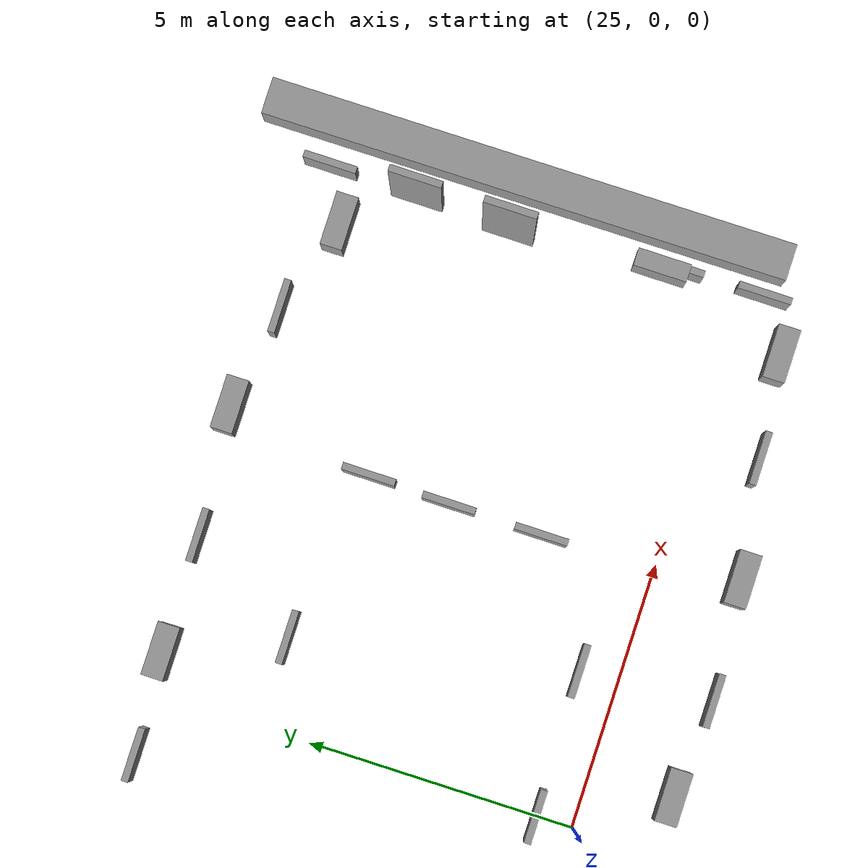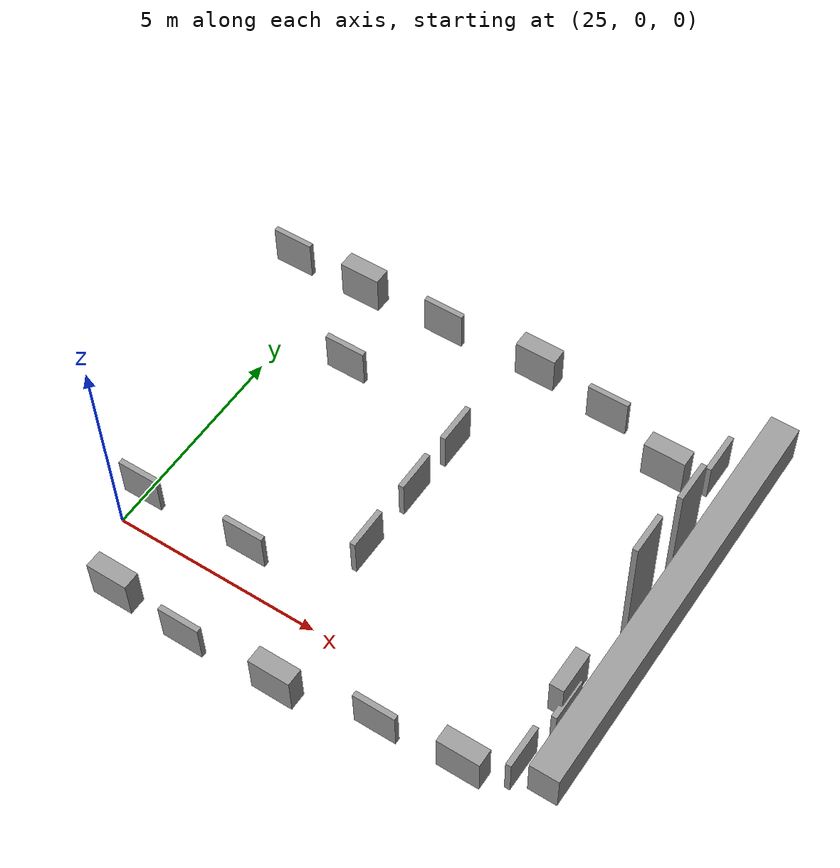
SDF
<sdf version="1.6">
 <world name="default">
  <model name="ground">
   <link name="body">
    <collision name="geom">
     <geometry><plane><normal>0 0 1</normal><size>1000 1000</size></plane></geometry>
     <surface><friction><ode><mu>100</mu><mu2>50</mu2></ode></friction></surface>
    </collision>
   </link>
   <static>1</static>
  </model>
  <model name="unit_box_clone">
   <link name="link">
    <inertial>
     <mass>1</mass>
     <inertia>
      <ixx>0.166667</ixx>
      <ixy>0</ixy>
      <ixz>0</ixz>
      <iyy>0.166667</iyy>
      <iyz>0</iyz>
      <izz>0.166667</izz>
     </inertia>
    </inertial>
    <visual name="visual">
     <geometry><box><size>0.68148 9.92291 1</size></box></geometry>
     <material>
      <script><name>Gazebo/Grey</name><uri>file://media/materials/scripts/gazebo.material</uri></script>
      <shader type="pixel"/>
      <ambient>0.3 0.3 0.3 1</ambient>
      <diffuse>0.7 0.7 0.7 1</diffuse>
      <specular>0.01 0.01 0.01 1</specular>
      <emissive>0 0 0 1</emissive>
     </material>
    </visual>
    <collision name="collision">
     <geometry><box><size>0.68148 9.92291 1</size></box></geometry>
     <surface>
      <friction>
       <ode><mu>1</mu><mu2>1</mu2><fdir1>0 0 0</fdir1><slip1>0</slip1><slip2>0</slip2></ode>
       <torsional>
        <coefficient>1</coefficient>
        <patch_radius>0</patch_radius>
        <surface_radius>0</surface_radius>
        <use_patch_radius>1</use_patch_radius>
        <ode><slip>0</slip></ode>
       </torsional>
      </friction>
      <bounce><restitution_coefficient>0</restitution_coefficient><threshold>1e+06</threshold></bounce>
      <contact>
       <collide_without_contact>0</collide_without_contact>
       <collide_without_contact_bitmask>1</collide_without_contact_bitmask>
       <collide_bitmask>1</collide_bitmask>
       <ode>
        <soft_cfm>0</soft_cfm>
        <soft_erp>0.2</soft_erp>
        <kp>1e+13</kp>
        <kd>1</kd>
        <max_vel>0.01</max_vel>
        <min_depth>0</min_depth>
       </ode>
       <bullet>
        <split_impulse>1</split_impulse>
        <split_impulse_penetration_threshold>-0.01</split_impulse_penetration_threshold>
        <soft_cfm>0</soft_cfm>
        <soft_erp>0.2</soft_erp>
        <kp>1e+13</kp>
        <kd>1</kd>
       </bullet>
      </contact>
     </surface>
    </collision>
   </link>
   <static>1</static>
   <pose>35.8927 4.33216 0.500415 0 -0 0</pose>
  </model>
  <model name="unit_box_1_clone_0_clone_9">
   <link name="link">
    <inertial>
     <mass>1</mass>
     <inertia>
      <ixx>0.166667</ixx>
      <ixy>0</ixy>
      <ixz>0</ixz>
      <iyy>0.166667</iyy>
      <iyz>0</iyz>
      <izz>0.166667</izz>
     </inertia>
    </inertial>
    <visual name="visual">
     <geometry><box><size>1 0.413614 1</size></box></geometry>
     <material>
      <script><name>Gazebo/Grey</name><uri>file://media/materials/scripts/gazebo.material</uri></script>
      <shader type="pixel"/>
      <ambient>0.3 0.3 0.3 1</ambient>
      <diffuse>0.7 0.7 0.7 1</diffuse>
      <specular>0.01 0.01 0.01 1</specular>
      <emissive>0 0 0 1</emissive>
     </material>
    </visual>
    <collision name="collision">
     <geometry><box><size>1 0.413614 1</size></box></geometry>
     <surface>
      <friction>
       <ode><mu>1</mu><mu2>1</mu2><fdir1>0 0 0</fdir1><slip1>0</slip1><slip2>0</slip2></ode>
       <torsional>
        <coefficient>1</coefficient>
        <patch_radius>0</patch_radius>
        <surface_radius>0</surface_radius>
        <use_patch_radius>1</use_patch_radius>
        <ode><slip>0</slip></ode>
       </torsional>
      </friction>
      <bounce><restitution_coefficient>0</restitution_coefficient><threshold>1e+06</threshold></bounce>
      <contact>
       <collide_without_contact>0</collide_without_contact>
       <collide_without_contact_bitmask>1</collide_without_contact_bitmask>
       <collide_bitmask>1</collide_bitmask>
       <ode>
        <soft_cfm>0</soft_cfm>
        <soft_erp>0.2</soft_erp>
        <kp>1e+13</kp>
        <kd>1</kd>
        <max_vel>0.01</max_vel>
        <min_depth>0</min_depth>
       </ode>
       <bullet>
        <split_impulse>1</split_impulse>
        <split_impulse_penetration_threshold>-0.01</split_impulse_penetration_threshold>
        <soft_cfm>0</soft_cfm>
        <soft_erp>0.2</soft_erp>
        <kp>1e+13</kp>
        <kd>1</kd>
       </bullet>
      </contact>
     </surface>
    </collision>
   </link>
   <static>1</static>
   <pose>25.7785 8.00947 0.500039 1e-05 -0 0</pose>
  </model>
  <model name="unit_box_1_clone_0_clone_10">
   <link name="link">
    <inertial>
     <mass>1</mass>
     <inertia>
      <ixx>0.166667</ixx>
      <ixy>0</ixy>
      <ixz>0</ixz>
      <iyy>0.166667</iyy>
      <iyz>0</iyz>
      <izz>0.166667</izz>
     </inertia>
    </inertial>
    <visual name="visual">
     <geometry><box><size>1 0.413614 1</size></box></geometry>
     <material>
      <script><name>Gazebo/Grey</name><uri>file://media/materials/scripts/gazebo.material</uri></script>
      <shader type="pixel"/>
      <ambient>0.3 0.3 0.3 1</ambient>
      <diffuse>0.7 0.7 0.7 1</diffuse>
      <specular>0.01 0.01 0.01 1</specular>
      <emissive>0 0 0 1</emissive>
     </material>
    </visual>
    <collision name="collision">
     <geometry><box><size>1 0.413614 1</size></box></geometry>
     <surface>
      <friction>
       <ode><mu>1</mu><mu2>1</mu2><fdir1>0 0 0</fdir1><slip1>0</slip1><slip2>0</slip2></ode>
       <torsional>
        <coefficient>1</coefficient>
        <patch_radius>0</patch_radius>
        <surface_radius>0</surface_radius>
        <use_patch_radius>1</use_patch_radius>
        <ode><slip>0</slip></ode>
       </torsional>
      </friction>
      <bounce><restitution_coefficient>0</restitution_coefficient><threshold>1e+06</threshold></bounce>
      <contact>
       <collide_without_contact>0</collide_without_contact>
       <collide_without_contact_bitmask>1</collide_without_contact_bitmask>
       <collide_bitmask>1</collide_bitmask>
       <ode>
        <soft_cfm>0</soft_cfm>
        <soft_erp>0.2</soft_erp>
        <kp>1e+13</kp>
        <kd>1</kd>
        <max_vel>0.01</max_vel>
        <min_depth>0</min_depth>
       </ode>
       <bullet>
        <split_impulse>1</split_impulse>
        <split_impulse_penetration_threshold>-0.01</split_impulse_penetration_threshold>
        <soft_cfm>0</soft_cfm>
        <soft_erp>0.2</soft_erp>
        <kp>1e+13</kp>
        <kd>1</kd>
       </bullet>
      </contact>
     </surface>
    </collision>
   </link>
   <static>1</static>
   <pose>30.3719 8.20697 0.500039 1e-05 -0 0</pose>
  </model>
  <model name="unit_box_1_clone_0_clone_12">
   <link name="link">
    <inertial>
     <mass>1</mass>
     <inertia>
      <ixx>0.166667</ixx>
      <ixy>0</ixy>
      <ixz>0</ixz>
      <iyy>0.166667</iyy>
      <iyz>0</iyz>
      <izz>0.166667</izz>
     </inertia>
    </inertial>
    <visual name="visual">
     <geometry><box><size>1 0.413614 1</size></box></geometry>
     <material>
      <script><name>Gazebo/Grey</name><uri>file://media/materials/scripts/gazebo.material</uri></script>
      <shader type="pixel"/>
      <ambient>0.3 0.3 0.3 1</ambient>
      <diffuse>0.7 0.7 0.7 1</diffuse>
      <specular>0.01 0.01 0.01 1</specular>
      <emissive>0 0 0 1</emissive>
     </material>
    </visual>
    <collision name="collision">
     <geometry><box><size>1 0.413614 1</size></box></geometry>
     <surface>
      <friction>
       <ode><mu>1</mu><mu2>1</mu2><fdir1>0 0 0</fdir1><slip1>0</slip1><slip2>0</slip2></ode>
       <torsional>
        <coefficient>1</coefficient>
        <patch_radius>0</patch_radius>
        <surface_radius>0</surface_radius>
        <use_patch_radius>1</use_patch_radius>
        <ode><slip>0</slip></ode>
       </torsional>
      </friction>
      <bounce><restitution_coefficient>0</restitution_coefficient><threshold>1e+06</threshold></bounce>
      <contact>
       <collide_without_contact>0</collide_without_contact>
       <collide_without_contact_bitmask>1</collide_without_contact_bitmask>
       <collide_bitmask>1</collide_bitmask>
       <ode>
        <soft_cfm>0</soft_cfm>
        <soft_erp>0.2</soft_erp>
        <kp>1e+13</kp>
        <kd>1</kd>
        <max_vel>0.01</max_vel>
        <min_depth>0</min_depth>
       </ode>
       <bullet>
        <split_impulse>1</split_impulse>
        <split_impulse_penetration_threshold>-0.01</split_impulse_penetration_threshold>
        <soft_cfm>0</soft_cfm>
        <soft_erp>0.2</soft_erp>
        <kp>1e+13</kp>
        <kd>1</kd>
       </bullet>
      </contact>
     </surface>
    </collision>
   </link>
   <static>1</static>
   <pose>26.1096 -1.52016 0.500033 1e-05 -0 0</pose>
  </model>
  <model name="unit_box_1_clone_0_clone_13">
   <link name="link">
    <inertial>
     <mass>1</mass>
     <inertia>
      <ixx>0.166667</ixx>
      <ixy>0</ixy>
      <ixz>0</ixz>
      <iyy>0.166667</iyy>
      <iyz>0</iyz>
      <izz>0.166667</izz>
     </inertia>
    </inertial>
    <visual name="visual">
     <geometry><box><size>1 0.413614 1</size></box></geometry>
     <material>
      <script><name>Gazebo/Grey</name><uri>file://media/materials/scripts/gazebo.material</uri></script>
      <shader type="pixel"/>
      <ambient>0.3 0.3 0.3 1</ambient>
      <diffuse>0.7 0.7 0.7 1</diffuse>
      <specular>0.01 0.01 0.01 1</specular>
      <emissive>0 0 0 1</emissive>
     </material>
    </visual>
    <collision name="collision">
     <geometry><box><size>1 0.413614 1</size></box></geometry>
     <surface>
      <friction>
       <ode><mu>1</mu><mu2>1</mu2><fdir1>0 0 0</fdir1><slip1>0</slip1><slip2>0</slip2></ode>
       <torsional>
        <coefficient>1</coefficient>
        <patch_radius>0</patch_radius>
        <surface_radius>0</surface_radius>
        <use_patch_radius>1</use_patch_radius>
        <ode><slip>0</slip></ode>
       </torsional>
      </friction>
      <bounce><restitution_coefficient>0</restitution_coefficient><threshold>1e+06</threshold></bounce>
      <contact>
       <collide_without_contact>0</collide_without_contact>
       <collide_without_contact_bitmask>1</collide_without_contact_bitmask>
       <collide_bitmask>1</collide_bitmask>
       <ode>
        <soft_cfm>0</soft_cfm>
        <soft_erp>0.2</soft_erp>
        <kp>1e+13</kp>
        <kd>1</kd>
        <max_vel>0.01</max_vel>
        <min_depth>0</min_depth>
       </ode>
       <bullet>
        <split_impulse>1</split_impulse>
        <split_impulse_penetration_threshold>-0.01</split_impulse_penetration_threshold>
        <soft_cfm>0</soft_cfm>
        <soft_erp>0.2</soft_erp>
        <kp>1e+13</kp>
        <kd>1</kd>
       </bullet>
      </contact>
     </surface>
    </collision>
   </link>
   <static>1</static>
   <pose>30.197 -1.52136 0.500034 1e-05 -0 0</pose>
  </model>
  <model name="unit_box_1_clone_0_clone_14">
   <link name="link">
    <inertial>
     <mass>1</mass>
     <inertia>
      <ixx>0.166667</ixx>
      <ixy>0</ixy>
      <ixz>0</ixz>
      <iyy>0.166667</iyy>
      <iyz>0</iyz>
      <izz>0.166667</izz>
     </inertia>
    </inertial>
    <visual name="visual">
     <geometry><box><size>1 0.413614 1</size></box></geometry>
     <material>
      <script><name>Gazebo/Grey</name><uri>file://media/materials/scripts/gazebo.material</uri></script>
      <shader type="pixel"/>
      <ambient>0.3 0.3 0.3 1</ambient>
      <diffuse>0.7 0.7 0.7 1</diffuse>
      <specular>0.01 0.01 0.01 1</specular>
      <emissive>0 0 0 1</emissive>
     </material>
    </visual>
    <collision name="collision">
     <geometry><box><size>1 0.413614 1</size></box></geometry>
     <surface>
      <friction>
       <ode><mu>1</mu><mu2>1</mu2><fdir1>0 0 0</fdir1><slip1>0</slip1><slip2>0</slip2></ode>
       <torsional>
        <coefficient>1</coefficient>
        <patch_radius>0</patch_radius>
        <surface_radius>0</surface_radius>
        <use_patch_radius>1</use_patch_radius>
        <ode><slip>0</slip></ode>
       </torsional>
      </friction>
      <bounce><restitution_coefficient>0</restitution_coefficient><threshold>1e+06</threshold></bounce>
      <contact>
       <collide_without_contact>0</collide_without_contact>
       <collide_without_contact_bitmask>1</collide_without_contact_bitmask>
       <collide_bitmask>1</collide_bitmask>
       <ode>
        <soft_cfm>0</soft_cfm>
        <soft_erp>0.2</soft_erp>
        <kp>1e+13</kp>
        <kd>1</kd>
        <max_vel>0.01</max_vel>
        <min_depth>0</min_depth>
       </ode>
       <bullet>
        <split_impulse>1</split_impulse>
        <split_impulse_penetration_threshold>-0.01</split_impulse_penetration_threshold>
        <soft_cfm>0</soft_cfm>
        <soft_erp>0.2</soft_erp>
        <kp>1e+13</kp>
        <kd>1</kd>
       </bullet>
      </contact>
     </surface>
    </collision>
   </link>
   <static>1</static>
   <pose>34.1216 7.35234 0.500025 1e-05 -0 0</pose>
  </model>
  <model name="unit_box_1_clone_0_clone_15">
   <link name="link">
    <inertial>
     <mass>1</mass>
     <inertia>
      <ixx>0.166667</ixx>
      <ixy>0</ixy>
      <ixz>0</ixz>
      <iyy>0.166667</iyy>
      <iyz>0</iyz>
      <izz>0.166667</izz>
     </inertia>
    </inertial>
    <visual name="visual">
     <geometry><box><size>1 0.413614 1</size></box></geometry>
     <material>
      <script><name>Gazebo/Grey</name><uri>file://media/materials/scripts/gazebo.material</uri></script>
      <shader type="pixel"/>
      <ambient>0.3 0.3 0.3 1</ambient>
      <diffuse>0.7 0.7 0.7 1</diffuse>
      <specular>0.01 0.01 0.01 1</specular>
      <emissive>0 0 0 1</emissive>
     </material>
    </visual>
    <collision name="collision">
     <geometry><box><size>1 0.413614 1</size></box></geometry>
     <surface>
      <friction>
       <ode><mu>1</mu><mu2>1</mu2><fdir1>0 0 0</fdir1><slip1>0</slip1><slip2>0</slip2></ode>
       <torsional>
        <coefficient>1</coefficient>
        <patch_radius>0</patch_radius>
        <surface_radius>0</surface_radius>
        <use_patch_radius>1</use_patch_radius>
        <ode><slip>0</slip></ode>
       </torsional>
      </friction>
      <bounce><restitution_coefficient>0</restitution_coefficient><threshold>1e+06</threshold></bounce>
      <contact>
       <collide_without_contact>0</collide_without_contact>
       <collide_without_contact_bitmask>1</collide_without_contact_bitmask>
       <collide_bitmask>1</collide_bitmask>
       <ode>
        <soft_cfm>0</soft_cfm>
        <soft_erp>0.2</soft_erp>
        <kp>1e+13</kp>
        <kd>1</kd>
        <max_vel>0.01</max_vel>
        <min_depth>0</min_depth>
       </ode>
       <bullet>
        <split_impulse>1</split_impulse>
        <split_impulse_penetration_threshold>-0.01</split_impulse_penetration_threshold>
        <soft_cfm>0</soft_cfm>
        <soft_erp>0.2</soft_erp>
        <kp>1e+13</kp>
        <kd>1</kd>
       </bullet>
      </contact>
     </surface>
    </collision>
   </link>
   <static>1</static>
   <pose>34.2763 -0.955923 0.500039 1e-05 -0 0</pose>
  </model>
  <model name="unit_box_1_clone_0_clone_16_clone_3">
   <link name="link">
    <inertial>
     <mass>1</mass>
     <inertia>
      <ixx>0.166667</ixx>
      <ixy>0</ixy>
      <ixz>0</ixz>
      <iyy>0.166667</iyy>
      <iyz>0</iyz>
      <izz>0.166667</izz>
     </inertia>
    </inertial>
    <visual name="visual">
     <geometry><box><size>1 0.12971 1</size></box></geometry>
     <material>
      <script><name>Gazebo/Grey</name><uri>file://media/materials/scripts/gazebo.material</uri></script>
      <shader type="pixel"/>
      <ambient>0.3 0.3 0.3 1</ambient>
      <diffuse>0.7 0.7 0.7 1</diffuse>
      <specular>0.01 0.01 0.01 1</specular>
      <emissive>0 0 0 1</emissive>
     </material>
    </visual>
    <collision name="collision">
     <geometry><box><size>1 0.12971 1</size></box></geometry>
     <surface>
      <friction>
       <ode><mu>1</mu><mu2>1</mu2><fdir1>0 0 0</fdir1><slip1>0</slip1><slip2>0</slip2></ode>
       <torsional>
        <coefficient>1</coefficient>
        <patch_radius>0</patch_radius>
        <surface_radius>0</surface_radius>
        <use_patch_radius>1</use_patch_radius>
        <ode><slip>0</slip></ode>
       </torsional>
      </friction>
      <bounce><restitution_coefficient>0</restitution_coefficient><threshold>1e+06</threshold></bounce>
      <contact>
       <collide_without_contact>0</collide_without_contact>
       <collide_without_contact_bitmask>1</collide_without_contact_bitmask>
       <collide_bitmask>1</collide_bitmask>
       <ode>
        <soft_cfm>0</soft_cfm>
        <soft_erp>0.2</soft_erp>
        <kp>1e+13</kp>
        <kd>1</kd>
        <max_vel>0.01</max_vel>
        <min_depth>0</min_depth>
       </ode>
       <bullet>
        <split_impulse>1</split_impulse>
        <split_impulse_penetration_threshold>-0.01</split_impulse_penetration_threshold>
        <soft_cfm>0</soft_cfm>
        <soft_erp>0.2</soft_erp>
        <kp>1e+13</kp>
        <kd>1</kd>
       </bullet>
      </contact>
     </surface>
    </collision>
   </link>
   <static>1</static>
   <pose>27.965 -1.68844 0.500002 1e-05 -0 0</pose>
  </model>
  <model name="unit_box_1_clone_0_clone_16_clone_4">
   <link name="link">
    <inertial>
     <mass>1</mass>
     <inertia>
      <ixx>0.166667</ixx>
      <ixy>0</ixy>
      <ixz>0</ixz>
      <iyy>0.166667</iyy>
      <iyz>0</iyz>
      <izz>0.166667</izz>
     </inertia>
    </inertial>
    <visual name="visual">
     <geometry><box><size>1 0.12971 1</size></box></geometry>
     <material>
      <script><name>Gazebo/Grey</name><uri>file://media/materials/scripts/gazebo.material</uri></script>
      <shader type="pixel"/>
      <ambient>0.3 0.3 0.3 1</ambient>
      <diffuse>0.7 0.7 0.7 1</diffuse>
      <specular>0.01 0.01 0.01 1</specular>
      <emissive>0 0 0 1</emissive>
     </material>
    </visual>
    <collision name="collision">
     <geometry><box><size>1 0.12971 1</size></box></geometry>
     <surface>
      <friction>
       <ode><mu>1</mu><mu2>1</mu2><fdir1>0 0 0</fdir1><slip1>0</slip1><slip2>0</slip2></ode>
       <torsional>
        <coefficient>1</coefficient>
        <patch_radius>0</patch_radius>
        <surface_radius>0</surface_radius>
        <use_patch_radius>1</use_patch_radius>
        <ode><slip>0</slip></ode>
       </torsional>
      </friction>
      <bounce><restitution_coefficient>0</restitution_coefficient><threshold>1e+06</threshold></bounce>
      <contact>
       <collide_without_contact>0</collide_without_contact>
       <collide_without_contact_bitmask>1</collide_without_contact_bitmask>
       <collide_bitmask>1</collide_bitmask>
       <ode>
        <soft_cfm>0</soft_cfm>
        <soft_erp>0.2</soft_erp>
        <kp>1e+13</kp>
        <kd>1</kd>
        <max_vel>0.01</max_vel>
        <min_depth>0</min_depth>
       </ode>
       <bullet>
        <split_impulse>1</split_impulse>
        <split_impulse_penetration_threshold>-0.01</split_impulse_penetration_threshold>
        <soft_cfm>0</soft_cfm>
        <soft_erp>0.2</soft_erp>
        <kp>1e+13</kp>
        <kd>1</kd>
       </bullet>
      </contact>
     </surface>
    </collision>
   </link>
   <static>1</static>
   <pose>32.3657 -1.16849 0.500007 1e-05 -0 0</pose>
  </model>
  <model name="unit_box_1_clone_0_clone_16_clone_5">
   <link name="link">
    <inertial>
     <mass>1</mass>
     <inertia>
      <ixx>0.166667</ixx>
      <ixy>0</ixy>
      <ixz>0</ixz>
      <iyy>0.166667</iyy>
      <iyz>0</iyz>
      <izz>0.166667</izz>
     </inertia>
    </inertial>
    <visual name="visual">
     <geometry><box><size>1 0.12971 1</size></box></geometry>
     <material>
      <script><name>Gazebo/Grey</name><uri>file://media/materials/scripts/gazebo.material</uri></script>
      <shader type="pixel"/>
      <ambient>0.3 0.3 0.3 1</ambient>
      <diffuse>0.7 0.7 0.7 1</diffuse>
      <specular>0.01 0.01 0.01 1</specular>
      <emissive>0 0 0 1</emissive>
     </material>
    </visual>
    <collision name="collision">
     <geometry><box><size>1 0.12971 1</size></box></geometry>
     <surface>
      <friction>
       <ode><mu>1</mu><mu2>1</mu2><fdir1>0 0 0</fdir1><slip1>0</slip1><slip2>0</slip2></ode>
       <torsional>
        <coefficient>1</coefficient>
        <patch_radius>0</patch_radius>
        <surface_radius>0</surface_radius>
        <use_patch_radius>1</use_patch_radius>
        <ode><slip>0</slip></ode>
       </torsional>
      </friction>
      <bounce><restitution_coefficient>0</restitution_coefficient><threshold>1e+06</threshold></bounce>
      <contact>
       <collide_without_contact>0</collide_without_contact>
       <collide_without_contact_bitmask>1</collide_without_contact_bitmask>
       <collide_bitmask>1</collide_bitmask>
       <ode>
        <soft_cfm>0</soft_cfm>
        <soft_erp>0.2</soft_erp>
        <kp>1e+13</kp>
        <kd>1</kd>
        <max_vel>0.01</max_vel>
        <min_depth>0</min_depth>
       </ode>
       <bullet>
        <split_impulse>1</split_impulse>
        <split_impulse_penetration_threshold>-0.01</split_impulse_penetration_threshold>
        <soft_cfm>0</soft_cfm>
        <soft_erp>0.2</soft_erp>
        <kp>1e+13</kp>
        <kd>1</kd>
       </bullet>
      </contact>
     </surface>
    </collision>
   </link>
   <static>1</static>
   <pose>32.3295 7.9026 0.499996 1e-05 -0 0</pose>
  </model>
  <model name="unit_box_1_clone_0_clone_16_clone_6">
   <link name="link">
    <inertial>
     <mass>1</mass>
     <inertia>
      <ixx>0.166667</ixx>
      <ixy>0</ixy>
      <ixz>0</ixz>
      <iyy>0.166667</iyy>
      <iyz>0</iyz>
      <izz>0.166667</izz>
     </inertia>
    </inertial>
    <visual name="visual">
     <geometry><box><size>1 0.12971 1</size></box></geometry>
     <material>
      <script><name>Gazebo/Grey</name><uri>file://media/materials/scripts/gazebo.material</uri></script>
      <shader type="pixel"/>
      <ambient>0.3 0.3 0.3 1</ambient>
      <diffuse>0.7 0.7 0.7 1</diffuse>
      <specular>0.01 0.01 0.01 1</specular>
      <emissive>0 0 0 1</emissive>
     </material>
    </visual>
    <collision name="collision">
     <geometry><box><size>1 0.12971 1</size></box></geometry>
     <surface>
      <friction>
       <ode><mu>1</mu><mu2>1</mu2><fdir1>0 0 0</fdir1><slip1>0</slip1><slip2>0</slip2></ode>
       <torsional>
        <coefficient>1</coefficient>
        <patch_radius>0</patch_radius>
        <surface_radius>0</surface_radius>
        <use_patch_radius>1</use_patch_radius>
        <ode><slip>0</slip></ode>
       </torsional>
      </friction>
      <bounce><restitution_coefficient>0</restitution_coefficient><threshold>1e+06</threshold></bounce>
      <contact>
       <collide_without_contact>0</collide_without_contact>
       <collide_without_contact_bitmask>1</collide_without_contact_bitmask>
       <collide_bitmask>1</collide_bitmask>
       <ode>
        <soft_cfm>0</soft_cfm>
        <soft_erp>0.2</soft_erp>
        <kp>1e+13</kp>
        <kd>1</kd>
        <max_vel>0.01</max_vel>
        <min_depth>0</min_depth>
       </ode>
       <bullet>
        <split_impulse>1</split_impulse>
        <split_impulse_penetration_threshold>-0.01</split_impulse_penetration_threshold>
        <soft_cfm>0</soft_cfm>
        <soft_erp>0.2</soft_erp>
        <kp>1e+13</kp>
        <kd>1</kd>
       </bullet>
      </contact>
     </surface>
    </collision>
   </link>
   <static>1</static>
   <pose>27.9586 8.02432 0.499997 1e-05 -0 0</pose>
  </model>
  <model name="unit_box_1_clone_0_clone_16_clone_7">
   <link name="link">
    <inertial>
     <mass>1</mass>
     <inertia>
      <ixx>0.166667</ixx>
      <ixy>0</ixy>
      <ixz>0</ixz>
      <iyy>0.166667</iyy>
      <iyz>0</iyz>
      <izz>0.166667</izz>
     </inertia>
    </inertial>
    <visual name="visual">
     <geometry><box><size>1 0.12971 1</size></box></geometry>
     <material>
      <script><name>Gazebo/Grey</name><uri>file://media/materials/scripts/gazebo.material</uri></script>
      <shader type="pixel"/>
      <ambient>0.3 0.3 0.3 1</ambient>
      <diffuse>0.7 0.7 0.7 1</diffuse>
      <specular>0.01 0.01 0.01 1</specular>
      <emissive>0 0 0 1</emissive>
     </material>
    </visual>
    <collision name="collision">
     <geometry><box><size>1 0.12971 1</size></box></geometry>
     <surface>
      <friction>
       <ode><mu>1</mu><mu2>1</mu2><fdir1>0 0 0</fdir1><slip1>0</slip1><slip2>0</slip2></ode>
       <torsional>
        <coefficient>1</coefficient>
        <patch_radius>0</patch_radius>
        <surface_radius>0</surface_radius>
        <use_patch_radius>1</use_patch_radius>
        <ode><slip>0</slip></ode>
       </torsional>
      </friction>
      <bounce><restitution_coefficient>0</restitution_coefficient><threshold>1e+06</threshold></bounce>
      <contact>
       <collide_without_contact>0</collide_without_contact>
       <collide_without_contact_bitmask>1</collide_without_contact_bitmask>
       <collide_bitmask>1</collide_bitmask>
       <ode>
        <soft_cfm>0</soft_cfm>
        <soft_erp>0.2</soft_erp>
        <kp>1e+13</kp>
        <kd>1</kd>
        <max_vel>0.01</max_vel>
        <min_depth>0</min_depth>
       </ode>
       <bullet>
        <split_impulse>1</split_impulse>
        <split_impulse_penetration_threshold>-0.01</split_impulse_penetration_threshold>
        <soft_cfm>0</soft_cfm>
        <soft_erp>0.2</soft_erp>
        <kp>1e+13</kp>
        <kd>1</kd>
       </bullet>
      </contact>
     </surface>
    </collision>
   </link>
   <static>1</static>
   <pose>23.8762 7.89806 0.499996 1e-05 -0 0</pose>
  </model>
  <model name="unit_box_1_clone_0_clone_16_clone_12_clone_0">
   <link name="link">
    <inertial>
     <mass>1</mass>
     <inertia>
      <ixx>0.166667</ixx>
      <ixy>0</ixy>
      <ixz>0</ixz>
      <iyy>0.166667</iyy>
      <iyz>0</iyz>
      <izz>0.166667</izz>
     </inertia>
    </inertial>
    <visual name="visual">
     <geometry><box><size>1 0.12971 1</size></box></geometry>
     <material>
      <script><name>Gazebo/Grey</name><uri>file://media/materials/scripts/gazebo.material</uri></script>
      <shader type="pixel"/>
      <ambient>0.3 0.3 0.3 1</ambient>
      <diffuse>0.7 0.7 0.7 1</diffuse>
      <specular>0.01 0.01 0.01 1</specular>
      <emissive>0 0 0 1</emissive>
     </material>
    </visual>
    <collision name="collision">
     <geometry><box><size>1 0.12971 1</size></box></geometry>
     <surface>
      <friction>
       <ode><mu>1</mu><mu2>1</mu2><fdir1>0 0 0</fdir1><slip1>0</slip1><slip2>0</slip2></ode>
       <torsional>
        <coefficient>1</coefficient>
        <patch_radius>0</patch_radius>
        <surface_radius>0</surface_radius>
        <use_patch_radius>1</use_patch_radius>
        <ode><slip>0</slip></ode>
       </torsional>
      </friction>
      <bounce><restitution_coefficient>0</restitution_coefficient><threshold>1e+06</threshold></bounce>
      <contact>
       <collide_without_contact>0</collide_without_contact>
       <collide_without_contact_bitmask>1</collide_without_contact_bitmask>
       <collide_bitmask>1</collide_bitmask>
       <ode>
        <soft_cfm>0</soft_cfm>
        <soft_erp>0.2</soft_erp>
        <kp>1e+13</kp>
        <kd>1</kd>
        <max_vel>0.01</max_vel>
        <min_depth>0</min_depth>
       </ode>
       <bullet>
        <split_impulse>1</split_impulse>
        <split_impulse_penetration_threshold>-0.01</split_impulse_penetration_threshold>
        <soft_cfm>0</soft_cfm>
        <soft_erp>0.2</soft_erp>
        <kp>1e+13</kp>
        <kd>1</kd>
       </bullet>
      </contact>
     </surface>
    </collision>
   </link>
   <static>1</static>
   <pose>35.0872 7.83741 0.500027 0 1e-05 -1.57561</pose>
  </model>
  <model name="unit_box_1_clone_0_clone_16_clone_12_clone_1">
   <link name="link">
    <inertial>
     <mass>1</mass>
     <inertia>
      <ixx>0.166667</ixx>
      <ixy>0</ixy>
      <ixz>0</ixz>
      <iyy>0.166667</iyy>
      <iyz>0</iyz>
      <izz>0.166667</izz>
     </inertia>
    </inertial>
    <visual name="visual">
     <geometry><box><size>1 0.12971 3.28461</size></box></geometry>
     <material>
      <script><name>Gazebo/Grey</name><uri>file://media/materials/scripts/gazebo.material</uri></script>
      <shader type="pixel"/>
      <ambient>0.3 0.3 0.3 1</ambient>
      <diffuse>0.7 0.7 0.7 1</diffuse>
      <specular>0.01 0.01 0.01 1</specular>
      <emissive>0 0 0 1</emissive>
     </material>
    </visual>
    <collision name="collision">
     <geometry><box><size>1 0.12971 3.28461</size></box></geometry>
     <surface>
      <friction>
       <ode><mu>1</mu><mu2>1</mu2><fdir1>0 0 0</fdir1><slip1>0</slip1><slip2>0</slip2></ode>
       <torsional>
        <coefficient>1</coefficient>
        <patch_radius>0</patch_radius>
        <surface_radius>0</surface_radius>
        <use_patch_radius>1</use_patch_radius>
        <ode><slip>0</slip></ode>
       </torsional>
      </friction>
      <bounce><restitution_coefficient>0</restitution_coefficient><threshold>1e+06</threshold></bounce>
      <contact>
       <collide_without_contact>0</collide_without_contact>
       <collide_without_contact_bitmask>1</collide_without_contact_bitmask>
       <collide_bitmask>1</collide_bitmask>
       <ode>
        <soft_cfm>0</soft_cfm>
        <soft_erp>0.2</soft_erp>
        <kp>1e+13</kp>
        <kd>1</kd>
        <max_vel>0.01</max_vel>
        <min_depth>0</min_depth>
       </ode>
       <bullet>
        <split_impulse>1</split_impulse>
        <split_impulse_penetration_threshold>-0.01</split_impulse_penetration_threshold>
        <soft_cfm>0</soft_cfm>
        <soft_erp>0.2</soft_erp>
        <kp>1e+13</kp>
        <kd>1</kd>
       </bullet>
      </contact>
     </surface>
    </collision>
   </link>
   <static>1</static>
   <pose>35.1873 6.2409 0.300334 0 1e-05 -1.57561</pose>
  </model>
  <model name="unit_box_1_clone_0_clone_16_clone_12_clone_2">
   <link name="link">
    <inertial>
     <mass>1</mass>
     <inertia>
      <ixx>0.166667</ixx>
      <ixy>0</ixy>
      <ixz>0</ixz>
      <iyy>0.166667</iyy>
      <iyz>0</iyz>
      <izz>0.166667</izz>
     </inertia>
    </inertial>
    <visual name="visual">
     <geometry><box><size>1 0.12971 1</size></box></geometry>
     <material>
      <script><name>Gazebo/Grey</name><uri>file://media/materials/scripts/gazebo.material</uri></script>
      <shader type="pixel"/>
      <ambient>0.3 0.3 0.3 1</ambient>
      <diffuse>0.7 0.7 0.7 1</diffuse>
      <specular>0.01 0.01 0.01 1</specular>
      <emissive>0 0 0 1</emissive>
     </material>
    </visual>
    <collision name="collision">
     <geometry><box><size>1 0.12971 1</size></box></geometry>
     <surface>
      <friction>
       <ode><mu>1</mu><mu2>1</mu2><fdir1>0 0 0</fdir1><slip1>0</slip1><slip2>0</slip2></ode>
       <torsional>
        <coefficient>1</coefficient>
        <patch_radius>0</patch_radius>
        <surface_radius>0</surface_radius>
        <use_patch_radius>1</use_patch_radius>
        <ode><slip>0</slip></ode>
       </torsional>
      </friction>
      <bounce><restitution_coefficient>0</restitution_coefficient><threshold>1e+06</threshold></bounce>
      <contact>
       <collide_without_contact>0</collide_without_contact>
       <collide_without_contact_bitmask>1</collide_without_contact_bitmask>
       <collide_bitmask>1</collide_bitmask>
       <ode>
        <soft_cfm>0</soft_cfm>
        <soft_erp>0.2</soft_erp>
        <kp>1e+13</kp>
        <kd>1</kd>
        <max_vel>0.01</max_vel>
        <min_depth>0</min_depth>
       </ode>
       <bullet>
        <split_impulse>1</split_impulse>
        <split_impulse_penetration_threshold>-0.01</split_impulse_penetration_threshold>
        <soft_cfm>0</soft_cfm>
        <soft_erp>0.2</soft_erp>
        <kp>1e+13</kp>
        <kd>1</kd>
       </bullet>
      </contact>
     </surface>
    </collision>
   </link>
   <static>1</static>
   <pose>35.2854 1.27809 -0.063336 0 1e-05 -1.57561</pose>
  </model>
  <model name="unit_box_1_clone_0_clone_16_clone_12_clone_3">
   <link name="link">
    <inertial>
     <mass>1</mass>
     <inertia>
      <ixx>0.166667</ixx>
      <ixy>0</ixy>
      <ixz>0</ixz>
      <iyy>0.166667</iyy>
      <iyz>0</iyz>
      <izz>0.166667</izz>
     </inertia>
    </inertial>
    <visual name="visual">
     <geometry><box><size>1 0.12971 1</size></box></geometry>
     <material>
      <script><name>Gazebo/Grey</name><uri>file://media/materials/scripts/gazebo.material</uri></script>
      <shader type="pixel"/>
      <ambient>0.3 0.3 0.3 1</ambient>
      <diffuse>0.7 0.7 0.7 1</diffuse>
      <specular>0.01 0.01 0.01 1</specular>
      <emissive>0 0 0 1</emissive>
     </material>
    </visual>
    <collision name="collision">
     <geometry><box><size>1 0.12971 1</size></box></geometry>
     <surface>
      <friction>
       <ode><mu>1</mu><mu2>1</mu2><fdir1>0 0 0</fdir1><slip1>0</slip1><slip2>0</slip2></ode>
       <torsional>
        <coefficient>1</coefficient>
        <patch_radius>0</patch_radius>
        <surface_radius>0</surface_radius>
        <use_patch_radius>1</use_patch_radius>
        <ode><slip>0</slip></ode>
       </torsional>
      </friction>
      <bounce><restitution_coefficient>0</restitution_coefficient><threshold>1e+06</threshold></bounce>
      <contact>
       <collide_without_contact>0</collide_without_contact>
       <collide_without_contact_bitmask>1</collide_without_contact_bitmask>
       <collide_bitmask>1</collide_bitmask>
       <ode>
        <soft_cfm>0</soft_cfm>
        <soft_erp>0.2</soft_erp>
        <kp>1e+13</kp>
        <kd>1</kd>
        <max_vel>0.01</max_vel>
        <min_depth>0</min_depth>
       </ode>
       <bullet>
        <split_impulse>1</split_impulse>
        <split_impulse_penetration_threshold>-0.01</split_impulse_penetration_threshold>
        <soft_cfm>0</soft_cfm>
        <soft_erp>0.2</soft_erp>
        <kp>1e+13</kp>
        <kd>1</kd>
       </bullet>
      </contact>
     </surface>
    </collision>
   </link>
   <static>1</static>
   <pose>35.2269 -0.348105 0.500027 0 1e-05 -1.57561</pose>
  </model>
  <model name="unit_box_1_clone_0_clone_16_clone_12_clone_4">
   <link name="link">
    <inertial>
     <mass>1</mass>
     <inertia>
      <ixx>0.166667</ixx>
      <ixy>0</ixy>
      <ixz>0</ixz>
      <iyy>0.166667</iyy>
      <iyz>0</iyz>
      <izz>0.166667</izz>
     </inertia>
    </inertial>
    <visual name="visual">
     <geometry><box><size>1 0.12971 4.01947</size></box></geometry>
     <material>
      <script><name>Gazebo/Grey</name><uri>file://media/materials/scripts/gazebo.material</uri></script>
      <shader type="pixel"/>
      <ambient>0.3 0.3 0.3 1</ambient>
      <diffuse>0.7 0.7 0.7 1</diffuse>
      <specular>0.01 0.01 0.01 1</specular>
      <emissive>0 0 0 1</emissive>
     </material>
    </visual>
    <collision name="collision">
     <geometry><box><size>1 0.12971 4.01947</size></box></geometry>
     <surface>
      <friction>
       <ode><mu>1</mu><mu2>1</mu2><fdir1>0 0 0</fdir1><slip1>0</slip1><slip2>0</slip2></ode>
       <torsional>
        <coefficient>1</coefficient>
        <patch_radius>0</patch_radius>
        <surface_radius>0</surface_radius>
        <use_patch_radius>1</use_patch_radius>
        <ode><slip>0</slip></ode>
       </torsional>
      </friction>
      <bounce><restitution_coefficient>0</restitution_coefficient><threshold>1e+06</threshold></bounce>
      <contact>
       <collide_without_contact>0</collide_without_contact>
       <collide_without_contact_bitmask>1</collide_without_contact_bitmask>
       <collide_bitmask>1</collide_bitmask>
       <ode>
        <soft_cfm>0</soft_cfm>
        <soft_erp>0.2</soft_erp>
        <kp>1e+13</kp>
        <kd>1</kd>
        <max_vel>0.01</max_vel>
        <min_depth>0</min_depth>
       </ode>
       <bullet>
        <split_impulse>1</split_impulse>
        <split_impulse_penetration_threshold>-0.01</split_impulse_penetration_threshold>
        <soft_cfm>0</soft_cfm>
        <soft_erp>0.2</soft_erp>
        <kp>1e+13</kp>
        <kd>1</kd>
       </bullet>
      </contact>
     </surface>
    </collision>
   </link>
   <static>1</static>
   <pose>35.1382 4.44766 0.252282 0 1e-05 -1.57561</pose>
  </model>
  <model name="unit_box_1_clone_0_clone_16_clone_12_clone_5">
   <link name="link">
    <inertial>
     <mass>1</mass>
     <inertia>
      <ixx>0.166667</ixx>
      <ixy>0</ixy>
      <ixz>0</ixz>
      <iyy>0.166667</iyy>
      <iyz>0</iyz>
      <izz>0.166667</izz>
     </inertia>
    </inertial>
    <visual name="visual">
     <geometry><box><size>1 0.330697 1</size></box></geometry>
     <material>
      <script><name>Gazebo/Grey</name><uri>file://media/materials/scripts/gazebo.material</uri></script>
      <shader type="pixel"/>
      <ambient>0.3 0.3 0.3 1</ambient>
      <diffuse>0.7 0.7 0.7 1</diffuse>
      <specular>0.01 0.01 0.01 1</specular>
      <emissive>0 0 0 1</emissive>
     </material>
    </visual>
    <collision name="collision">
     <geometry><box><size>1 0.330697 1</size></box></geometry>
     <surface>
      <friction>
       <ode><mu>1</mu><mu2>1</mu2><fdir1>0 0 0</fdir1><slip1>0</slip1><slip2>0</slip2></ode>
       <torsional>
        <coefficient>1</coefficient>
        <patch_radius>0</patch_radius>
        <surface_radius>0</surface_radius>
        <use_patch_radius>1</use_patch_radius>
        <ode><slip>0</slip></ode>
       </torsional>
      </friction>
      <bounce><restitution_coefficient>0</restitution_coefficient><threshold>1e+06</threshold></bounce>
      <contact>
       <collide_without_contact>0</collide_without_contact>
       <collide_without_contact_bitmask>1</collide_without_contact_bitmask>
       <collide_bitmask>1</collide_bitmask>
       <ode>
        <soft_cfm>0</soft_cfm>
        <soft_erp>0.2</soft_erp>
        <kp>1e+13</kp>
        <kd>1</kd>
        <max_vel>0.01</max_vel>
        <min_depth>0</min_depth>
       </ode>
       <bullet>
        <split_impulse>1</split_impulse>
        <split_impulse_penetration_threshold>-0.01</split_impulse_penetration_threshold>
        <soft_cfm>0</soft_cfm>
        <soft_erp>0.2</soft_erp>
        <kp>1e+13</kp>
        <kd>1</kd>
       </bullet>
      </contact>
     </surface>
    </collision>
   </link>
   <static>1</static>
   <pose>35.1378 1.56781 0.547395 0 1e-05 -1.57561</pose>
  </model>
  <model name="unit_box_1_clone_0_clone_16_clone_3_clone_1">
   <link name="link">
    <inertial>
     <mass>1</mass>
     <inertia>
      <ixx>0.166667</ixx>
      <ixy>0</ixy>
      <ixz>0</ixz>
      <iyy>0.166667</iyy>
      <iyz>0</iyz>
      <izz>0.166667</izz>
     </inertia>
    </inertial>
    <visual name="visual">
     <geometry><box><size>1 0.12971 1</size></box></geometry>
     <material>
      <script><name>Gazebo/Grey</name><uri>file://media/materials/scripts/gazebo.material</uri></script>
      <shader type="pixel"/>
      <ambient>0.3 0.3 0.3 1</ambient>
      <diffuse>0.7 0.7 0.7 1</diffuse>
      <specular>0.01 0.01 0.01 1</specular>
      <emissive>0 0 0 1</emissive>
     </material>
    </visual>
    <collision name="collision">
     <geometry><box><size>1 0.12971 1</size></box></geometry>
     <surface>
      <friction>
       <ode><mu>1</mu><mu2>1</mu2><fdir1>0 0 0</fdir1><slip1>0</slip1><slip2>0</slip2></ode>
       <torsional>
        <coefficient>1</coefficient>
        <patch_radius>0</patch_radius>
        <surface_radius>0</surface_radius>
        <use_patch_radius>1</use_patch_radius>
        <ode><slip>0</slip></ode>
       </torsional>
      </friction>
      <bounce><restitution_coefficient>0</restitution_coefficient><threshold>1e+06</threshold></bounce>
      <contact>
       <collide_without_contact>0</collide_without_contact>
       <collide_without_contact_bitmask>1</collide_without_contact_bitmask>
       <collide_bitmask>1</collide_bitmask>
       <ode>
        <soft_cfm>0</soft_cfm>
        <soft_erp>0.2</soft_erp>
        <kp>1e+13</kp>
        <kd>1</kd>
        <max_vel>0.01</max_vel>
        <min_depth>0</min_depth>
       </ode>
       <bullet>
        <split_impulse>1</split_impulse>
        <split_impulse_penetration_threshold>-0.01</split_impulse_penetration_threshold>
        <soft_cfm>0</soft_cfm>
        <soft_erp>0.2</soft_erp>
        <kp>1e+13</kp>
        <kd>1</kd>
       </bullet>
      </contact>
     </surface>
    </collision>
   </link>
   <static>1</static>
   <pose>25.0271 0.719384 0.5 1e-05 -0 0</pose>
  </model>
  <model name="unit_box_1_clone_0_clone_16_clone_3_clone_13">
   <link name="link">
    <inertial>
     <mass>1</mass>
     <inertia>
      <ixx>0.166667</ixx>
      <ixy>0</ixy>
      <ixz>0</ixz>
      <iyy>0.166667</iyy>
      <iyz>0</iyz>
      <izz>0.166667</izz>
     </inertia>
    </inertial>
    <visual name="visual">
     <geometry><box><size>1 0.12971 1</size></box></geometry>
     <material>
      <script><name>Gazebo/Grey</name><uri>file://media/materials/scripts/gazebo.material</uri></script>
      <shader type="pixel"/>
      <ambient>0.3 0.3 0.3 1</ambient>
      <diffuse>0.7 0.7 0.7 1</diffuse>
      <specular>0.01 0.01 0.01 1</specular>
      <emissive>0 0 0 1</emissive>
     </material>
    </visual>
    <collision name="collision">
     <geometry><box><size>1 0.12971 1</size></box></geometry>
     <surface>
      <friction>
       <ode><mu>1</mu><mu2>1</mu2><fdir1>0 0 0</fdir1><slip1>0</slip1><slip2>0</slip2></ode>
       <torsional>
        <coefficient>1</coefficient>
        <patch_radius>0</patch_radius>
        <surface_radius>0</surface_radius>
        <use_patch_radius>1</use_patch_radius>
        <ode><slip>0</slip></ode>
       </torsional>
      </friction>
      <bounce><restitution_coefficient>0</restitution_coefficient><threshold>1e+06</threshold></bounce>
      <contact>
       <collide_without_contact>0</collide_without_contact>
       <collide_without_contact_bitmask>1</collide_without_contact_bitmask>
       <collide_bitmask>1</collide_bitmask>
       <ode>
        <soft_cfm>0</soft_cfm>
        <soft_erp>0.2</soft_erp>
        <kp>1e+13</kp>
        <kd>1</kd>
        <max_vel>0.01</max_vel>
        <min_depth>0</min_depth>
       </ode>
       <bullet>
        <split_impulse>1</split_impulse>
        <split_impulse_penetration_threshold>-0.01</split_impulse_penetration_threshold>
        <soft_cfm>0</soft_cfm>
        <soft_erp>0.2</soft_erp>
        <kp>1e+13</kp>
        <kd>1</kd>
       </bullet>
      </contact>
     </surface>
    </collision>
   </link>
   <static>1</static>
   <pose>26.7126 5.93096 0.500001 1e-05 -0 0</pose>
  </model>
  <model name="unit_box_1_clone_0_clone_16_clone_3_clone_14">
   <link name="link">
    <inertial>
     <mass>1</mass>
     <inertia>
      <ixx>0.166667</ixx>
      <ixy>0</ixy>
      <ixz>0</ixz>
      <iyy>0.166667</iyy>
      <iyz>0</iyz>
      <izz>0.166667</izz>
     </inertia>
    </inertial>
    <visual name="visual">
     <geometry><box><size>1 0.12971 1</size></box></geometry>
     <material>
      <script><name>Gazebo/Grey</name><uri>file://media/materials/scripts/gazebo.material</uri></script>
      <shader type="pixel"/>
      <ambient>0.3 0.3 0.3 1</ambient>
      <diffuse>0.7 0.7 0.7 1</diffuse>
      <specular>0.01 0.01 0.01 1</specular>
      <emissive>0 0 0 1</emissive>
     </material>
    </visual>
    <collision name="collision">
     <geometry><box><size>1 0.12971 1</size></box></geometry>
     <surface>
      <friction>
       <ode><mu>1</mu><mu2>1</mu2><fdir1>0 0 0</fdir1><slip1>0</slip1><slip2>0</slip2></ode>
       <torsional>
        <coefficient>1</coefficient>
        <patch_radius>0</patch_radius>
        <surface_radius>0</surface_radius>
        <use_patch_radius>1</use_patch_radius>
        <ode><slip>0</slip></ode>
       </torsional>
      </friction>
      <bounce><restitution_coefficient>0</restitution_coefficient><threshold>1e+06</threshold></bounce>
      <contact>
       <collide_without_contact>0</collide_without_contact>
       <collide_without_contact_bitmask>1</collide_without_contact_bitmask>
       <collide_bitmask>1</collide_bitmask>
       <ode>
        <soft_cfm>0</soft_cfm>
        <soft_erp>0.2</soft_erp>
        <kp>1e+13</kp>
        <kd>1</kd>
        <max_vel>0.01</max_vel>
        <min_depth>0</min_depth>
       </ode>
       <bullet>
        <split_impulse>1</split_impulse>
        <split_impulse_penetration_threshold>-0.01</split_impulse_penetration_threshold>
        <soft_cfm>0</soft_cfm>
        <soft_erp>0.2</soft_erp>
        <kp>1e+13</kp>
        <kd>1</kd>
       </bullet>
      </contact>
     </surface>
    </collision>
   </link>
   <static>1</static>
   <pose>27.7356 0.768181 0.500001 1e-05 -0 0</pose>
  </model>
  <model name="unit_box_1_clone_0_clone_16_clone_12_clone_11">
   <link name="link">
    <inertial>
     <mass>1</mass>
     <inertia>
      <ixx>0.166667</ixx>
      <ixy>0</ixy>
      <ixz>0</ixz>
      <iyy>0.166667</iyy>
      <iyz>0</iyz>
      <izz>0.166667</izz>
     </inertia>
    </inertial>
    <visual name="visual">
     <geometry><box><size>1 0.12971 1</size></box></geometry>
     <material>
      <script><name>Gazebo/Grey</name><uri>file://media/materials/scripts/gazebo.material</uri></script>
      <shader type="pixel"/>
      <ambient>0.3 0.3 0.3 1</ambient>
      <diffuse>0.7 0.7 0.7 1</diffuse>
      <specular>0.01 0.01 0.01 1</specular>
      <emissive>0 0 0 1</emissive>
     </material>
    </visual>
    <collision name="collision">
     <geometry><box><size>1 0.12971 1</size></box></geometry>
     <surface>
      <friction>
       <ode><mu>1</mu><mu2>1</mu2><fdir1>0 0 0</fdir1><slip1>0</slip1><slip2>0</slip2></ode>
       <torsional>
        <coefficient>1</coefficient>
        <patch_radius>0</patch_radius>
        <surface_radius>0</surface_radius>
        <use_patch_radius>1</use_patch_radius>
        <ode><slip>0</slip></ode>
       </torsional>
      </friction>
      <bounce><restitution_coefficient>0</restitution_coefficient><threshold>1e+06</threshold></bounce>
      <contact>
       <collide_without_contact>0</collide_without_contact>
       <collide_without_contact_bitmask>1</collide_without_contact_bitmask>
       <collide_bitmask>1</collide_bitmask>
       <ode>
        <soft_cfm>0</soft_cfm>
        <soft_erp>0.2</soft_erp>
        <kp>1e+13</kp>
        <kd>1</kd>
        <max_vel>0.01</max_vel>
        <min_depth>0</min_depth>
       </ode>
       <bullet>
        <split_impulse>1</split_impulse>
        <split_impulse_penetration_threshold>-0.01</split_impulse_penetration_threshold>
        <soft_cfm>0</soft_cfm>
        <soft_erp>0.2</soft_erp>
        <kp>1e+13</kp>
        <kd>1</kd>
       </bullet>
      </contact>
     </surface>
    </collision>
   </link>
   <static>1</static>
   <pose>29.9355 5.4382 0.500027 0 1e-05 -1.57561</pose>
  </model>
  <model name="unit_box_1_clone_0_clone_16_clone_12_clone_12">
   <link name="link">
    <inertial>
     <mass>1</mass>
     <inertia>
      <ixx>0.166667</ixx>
      <ixy>0</ixy>
      <ixz>0</ixz>
      <iyy>0.166667</iyy>
      <iyz>0</iyz>
      <izz>0.166667</izz>
     </inertia>
    </inertial>
    <visual name="visual">
     <geometry><box><size>1 0.12971 1</size></box></geometry>
     <material>
      <script><name>Gazebo/Grey</name><uri>file://media/materials/scripts/gazebo.material</uri></script>
      <shader type="pixel"/>
      <ambient>0.3 0.3 0.3 1</ambient>
      <diffuse>0.7 0.7 0.7 1</diffuse>
      <specular>0.01 0.01 0.01 1</specular>
      <emissive>0 0 0 1</emissive>
     </material>
    </visual>
    <collision name="collision">
     <geometry><box><size>1 0.12971 1</size></box></geometry>
     <surface>
      <friction>
       <ode><mu>1</mu><mu2>1</mu2><fdir1>0 0 0</fdir1><slip1>0</slip1><slip2>0</slip2></ode>
       <torsional>
        <coefficient>1</coefficient>
        <patch_radius>0</patch_radius>
        <surface_radius>0</surface_radius>
        <use_patch_radius>1</use_patch_radius>
        <ode><slip>0</slip></ode>
       </torsional>
      </friction>
      <bounce><restitution_coefficient>0</restitution_coefficient><threshold>1e+06</threshold></bounce>
      <contact>
       <collide_without_contact>0</collide_without_contact>
       <collide_without_contact_bitmask>1</collide_without_contact_bitmask>
       <collide_bitmask>1</collide_bitmask>
       <ode>
        <soft_cfm>0</soft_cfm>
        <soft_erp>0.2</soft_erp>
        <kp>1e+13</kp>
        <kd>1</kd>
        <max_vel>0.01</max_vel>
        <min_depth>0</min_depth>
       </ode>
       <bullet>
        <split_impulse>1</split_impulse>
        <split_impulse_penetration_threshold>-0.01</split_impulse_penetration_threshold>
        <soft_cfm>0</soft_cfm>
        <soft_erp>0.2</soft_erp>
        <kp>1e+13</kp>
        <kd>1</kd>
       </bullet>
      </contact>
     </surface>
    </collision>
   </link>
   <static>1</static>
   <pose>29.8886 3.91156 0.500027 0 1e-05 -1.57561</pose>
  </model>
  <model name="unit_box_1_clone_0_clone_16_clone_12_clone_13">
   <link name="link">
    <inertial>
     <mass>1</mass>
     <inertia>
      <ixx>0.166667</ixx>
      <ixy>0</ixy>
      <ixz>0</ixz>
      <iyy>0.166667</iyy>
      <iyz>0</iyz>
      <izz>0.166667</izz>
     </inertia>
    </inertial>
    <visual name="visual">
     <geometry><box><size>1 0.12971 1</size></box></geometry>
     <material>
      <script><name>Gazebo/Grey</name><uri>file://media/materials/scripts/gazebo.material</uri></script>
      <shader type="pixel"/>
      <ambient>0.3 0.3 0.3 1</ambient>
      <diffuse>0.7 0.7 0.7 1</diffuse>
      <specular>0.01 0.01 0.01 1</specular>
      <emissive>0 0 0 1</emissive>
     </material>
    </visual>
    <collision name="collision">
     <geometry><box><size>1 0.12971 1</size></box></geometry>
     <surface>
      <friction>
       <ode><mu>1</mu><mu2>1</mu2><fdir1>0 0 0</fdir1><slip1>0</slip1><slip2>0</slip2></ode>
       <torsional>
        <coefficient>1</coefficient>
        <patch_radius>0</patch_radius>
        <surface_radius>0</surface_radius>
        <use_patch_radius>1</use_patch_radius>
        <ode><slip>0</slip></ode>
       </torsional>
      </friction>
      <bounce><restitution_coefficient>0</restitution_coefficient><threshold>1e+06</threshold></bounce>
      <contact>
       <collide_without_contact>0</collide_without_contact>
       <collide_without_contact_bitmask>1</collide_without_contact_bitmask>
       <collide_bitmask>1</collide_bitmask>
       <ode>
        <soft_cfm>0</soft_cfm>
        <soft_erp>0.2</soft_erp>
        <kp>1e+13</kp>
        <kd>1</kd>
        <max_vel>0.01</max_vel>
        <min_depth>0</min_depth>
       </ode>
       <bullet>
        <split_impulse>1</split_impulse>
        <split_impulse_penetration_threshold>-0.01</split_impulse_penetration_threshold>
        <soft_cfm>0</soft_cfm>
        <soft_erp>0.2</soft_erp>
        <kp>1e+13</kp>
        <kd>1</kd>
       </bullet>
      </contact>
     </surface>
    </collision>
   </link>
   <static>1</static>
   <pose>29.8629 2.15938 0.500027 0 1e-05 -1.57561</pose>
  </model>
 </world>
</sdf>
